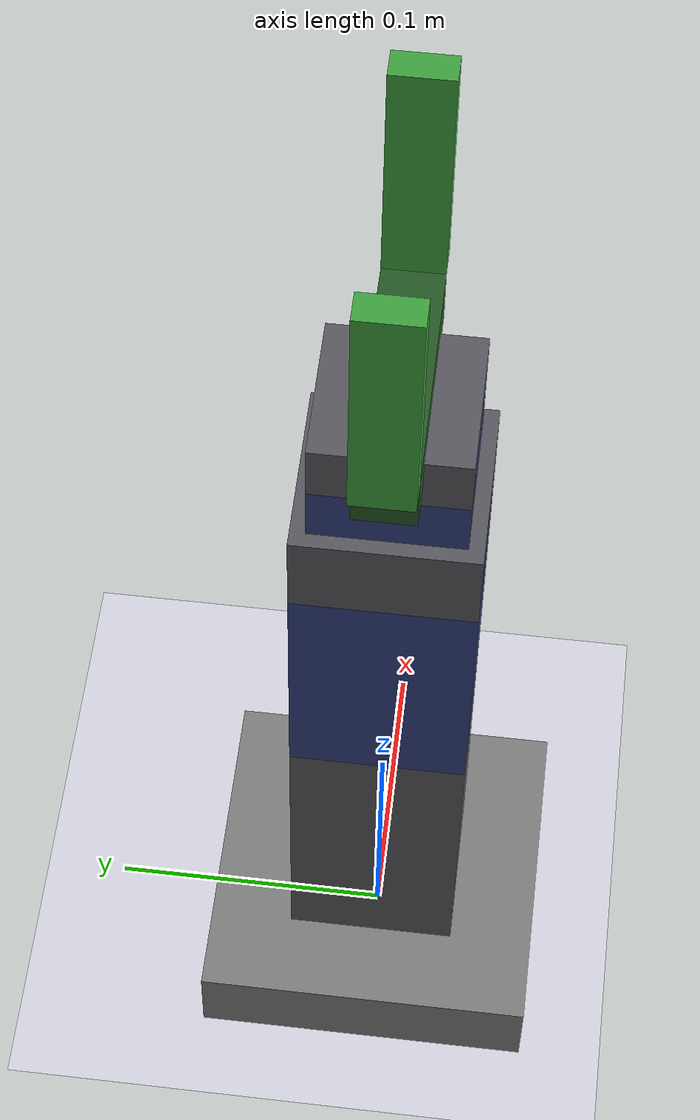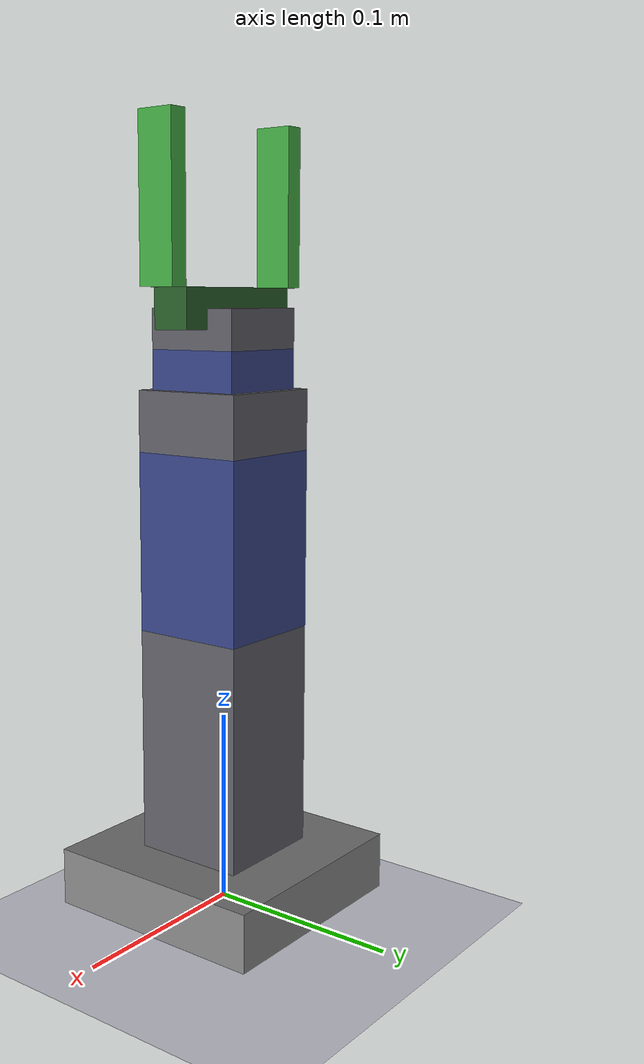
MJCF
<mujoco model="my_robot">

  <compiler angle="radian" autolimits="true"/>
  <option timestep="0.002" gravity="0 0 -9.81" integrator="implicitfast"/>

  <default>
    <!-- servo bodies: decorative only, no collision -->
    <default class="servo">
      <geom type="box" size="0.02 0.02 0.0225" mass="0.065"
            rgba="0.85 0.25 0.55 1" contype="0" conaffinity="0"/>
    </default>
    <default class="link">
      <geom rgba="0.35 0.35 0.38 1"/>
    </default>

    <geom density="600" friction="1.0 0.005 0.0001" contype="2" conaffinity="1"/>
    <joint damping="0.05" armature="0.01" frictionloss="0.02"/>
    <position kp="40" kv="2" ctrlrange="-3.15 3.15"/>
  </default>

  <worldbody>
    <light pos="0.5 -0.5 2.0" dir="-0.2 0.2 -1" diffuse="0.8 0.8 0.8"/>
    <geom name="floor" type="plane" size="2 2 0.1" rgba="0.85 0.85 0.9 1"
          contype="1" conaffinity="1"/>

    <!-- ============================ base ============================ -->
    <body name="base_link" pos="0 0 0">
      <geom name="base_plate" class="link" type="box" size="0.06 0.06 0.015"
            pos="0 0 0.015" rgba="0.5 0.5 0.5 1"/>

      <!-- ======================= base yaw ======================= -->
      <body name="shoulder_link" pos="0 0 0">
        <joint name="joint1" type="hinge" axis="0 0 1" range="-2.35619 2.35619"/>
        <geom name="shoulder_col" class="link" type="cylinder"
              size="0.05 0.01465" pos="0 0 0.01465" rgba="0.15 0.35 0.15 1"/>
        <geom name="servo_joint1" class="servo" pos="0 0 0.02"/>

        <!-- ======================= shoulder pitch ======================= -->
        <body name="arm_link" pos="0 0 0.0293">
          <joint name="joint2" type="hinge" axis="0 1 0" range="-0.785398 1.5708"/>
          <geom name="arm_box" class="link" type="box" size="0.03 0.03 0.059"
                pos="0 0 0.059"/>
          <geom name="servo_joint2" class="servo" pos="0 0 0.03"/>

          <!-- ======================= elbow pitch ======================= -->
          <body name="elbow_link" pos="0 0 0.118">
            <joint name="joint3" type="hinge" axis="0 1 0" range="-1.5708 1.5708"/>
            <geom name="elbow_box" class="link" type="box" size="0.03 0.03 0.046"
                  pos="0 0 0.046" rgba="0.2 0.25 0.5 1"/>
            <geom name="servo_joint3" class="servo" pos="0 0 0.03"/>

            <!-- ======================= wrist pitch ======================= -->
            <body name="forearm_link" pos="0 0 0.092">
              <joint name="joint4" type="hinge" axis="0 1 0" range="-1.5708 1.5708"/>
              <geom name="forearm_box" class="link" type="box" size="0.03 0.03 0.0155"
                    pos="0 0 0.0155"/>
              <geom name="servo_joint4" class="servo" pos="0 0 0.02"/>

              <!-- ======================= wrist roll ======================= -->
              <body name="wrist_link" pos="0 0 0.031">
                <joint name="joint5" type="hinge" axis="0 0 1" range="-2.35619 2.35619"/>
                <geom name="wrist_box" class="link" type="box" size="0.025 0.025 0.01"
                      pos="0 0 0.01" rgba="0.2 0.25 0.5 1"/>

                <!-- 30 mm from the joint5 axis to the gripper mount face -->
                <body name="hand_link" pos="0 0 0.02">
                  <geom name="hand_box" class="link" type="box" size="0.025 0.025 0.01"
                        pos="0 0 0.01"/>

                  <body name="tool_link" pos="0 0 0.01">
                    <!-- ================== gripper (simplified) ================== -->
                    <body name="gripper_base_link" pos="0 0 0">
                      <geom name="palm" type="box" size="0.04 0.01 0.01"
                            pos="0 0 0.01" rgba="0.15 0.35 0.15 1"/>

                      <!-- left finger: open at x=-45mm, travels +40mm to close -->
                      <body name="gripper_left_finger_link" pos="-0.045 0 0.02">
                        <joint name="gripper_left_finger_joint" type="slide"
                               axis="1 0 0" range="0 0.04"/>
                        <geom name="left_finger" type="box" size="0.005 0.01 0.04"
                              pos="0 0 0.04" rgba="0.25 0.65 0.25 1"/>
                      </body>

                      <!-- right finger: mirror, driven by the equality below -->
                      <body name="gripper_right_finger_link" pos="0.045 0 0.02">
                        <joint name="gripper_right_finger_joint" type="slide"
                               axis="1 0 0" range="-0.04 0"/>
                        <geom name="right_finger" type="box" size="0.005 0.01 0.04"
                              pos="0 0 0.04" rgba="0.25 0.65 0.25 1"/>
                      </body>
                    </body>
                  </body>
                </body>
              </body>
            </body>
          </body>
        </body>
      </body>
    </body>
  </worldbody>

  <!-- ===================== actuators ===================== -->
  <!-- qpos order: joint1 joint2 joint3 joint4 joint5  left_finger right_finger -->
  <actuator>
    <position name="act_joint1" joint="joint1" ctrlrange="-2.36 2.36"/>
    <position name="act_joint2" joint="joint2" ctrlrange="-0.79 1.58"/>
    <position name="act_joint3" joint="joint3" ctrlrange="-1.58 1.58"/>
    <position name="act_joint4" joint="joint4" ctrlrange="-1.58 1.58"/>
    <position name="act_joint5" joint="joint5" ctrlrange="-2.36 2.36"/>
    <position name="act_gripper" joint="gripper_left_finger_joint"
              ctrlrange="0 0.04" kp="80"/>
  </actuator>

  <equality>
    <joint joint1="gripper_left_finger_joint" joint2="gripper_right_finger_joint"
           polycoef="0 -1 0 0 0"/>
  </equality>

  <!-- home pose = servo zero pose, arm straight up, gripper open -->
  <keyframe>
    <key name="home"
         qpos="0 0 0 0 0 0 0"
         ctrl="0 0 0 0 0 0"/>
    <key name="ready"
         qpos="0 0.5 0.8 0.3 0 0.02 -0.02"
         ctrl="0 0.5 0.8 0.3 0 0.02"/>
  </keyframe>

</mujoco>
